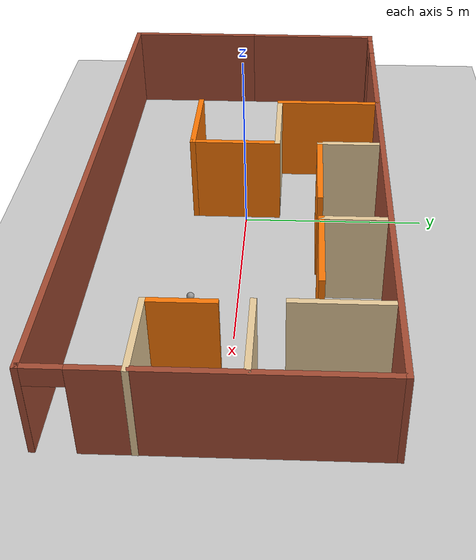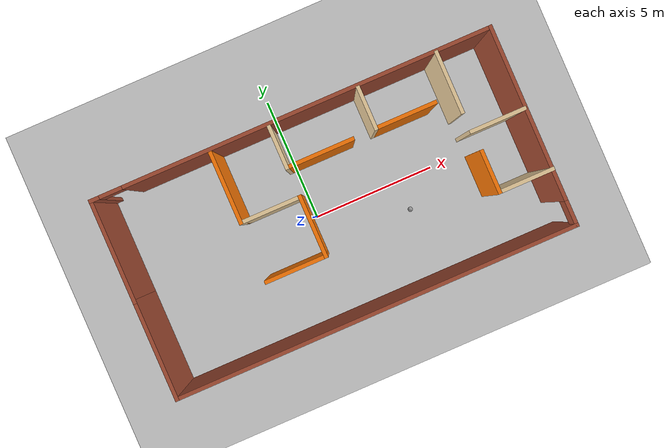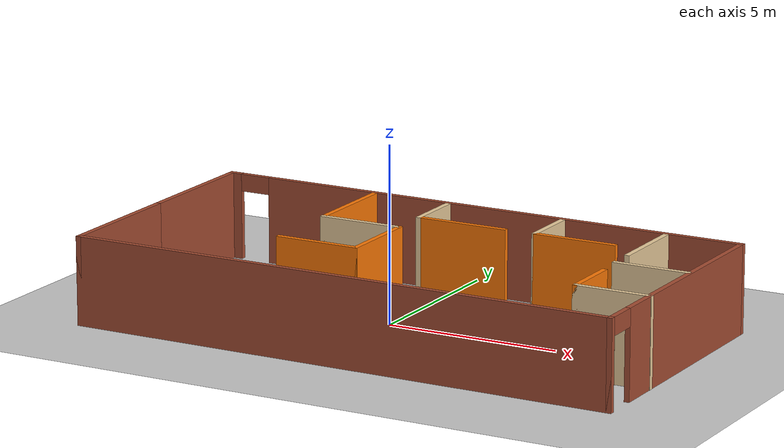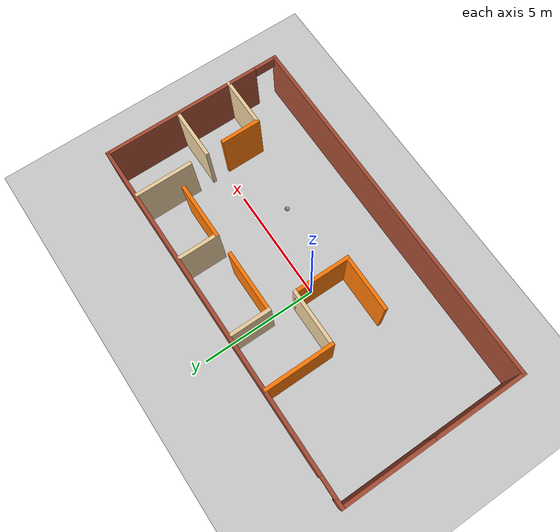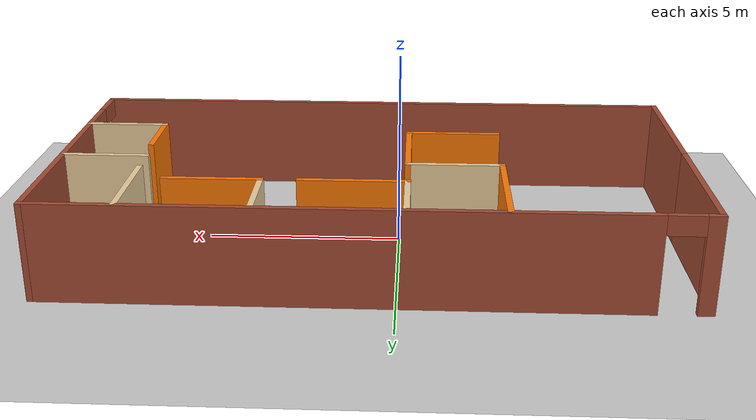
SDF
<sdf version="1.6">
 <world name="default">
  <light name="sun" type="directional">
   <pose>0 0 10 0 -0 0</pose>
   <diffuse>0.8 0.8 0.8 1</diffuse>
   <specular>0.2 0.2 0.2 1</specular>
   <attenuation>
    <range>1000</range>
    <constant>0.9</constant>
    <linear>0.01</linear>
    <quadratic>0.001</quadratic>
   </attenuation>
   <direction>-0.5 0.1 -0.9</direction>
  </light>
  <model name="ground_plane">
   <static>1</static>
   <link name="link">
    <collision name="collision">
     <geometry><plane><normal>0 0 1</normal><size>100 100</size></plane></geometry>
     <surface>
      <contact><collide_bitmask>65535</collide_bitmask></contact>
      <friction><ode><mu>100</mu><mu2>50</mu2></ode></friction>
     </surface>
    </collision>
    <visual name="visual">
     <cast_shadows>0</cast_shadows>
     <geometry><plane><normal>0 0 1</normal><size>100 100</size></plane></geometry>
     <material>
      <script><uri>file://media/materials/scripts/gazebo.material</uri><name>Gazebo/Grey</name></script>
     </material>
    </visual>
   </link>
  </model>
  <gravity>0 0 -9.8</gravity>
  <magnetic_field>6e-06 2.3e-05 -4.2e-05</magnetic_field>
  <atmosphere type="adiabatic"/>
  <physics name="default_physics" default="0" type="ode">
   <max_step_size>0.001</max_step_size>
   <real_time_factor>1</real_time_factor>
   <real_time_update_rate>1000</real_time_update_rate>
  </physics>
  <scene><ambient>0.4 0.4 0.4 1</ambient><background>0.7 0.7 0.7 1</background><shadows>1</shadows></scene>
  <audio><device>default</device></audio>
  <spherical_coordinates>
   <surface_model>EARTH_WGS84</surface_model>
   <latitude_deg>0</latitude_deg>
   <longitude_deg>0</longitude_deg>
   <elevation>0</elevation>
   <heading_deg>0</heading_deg>
  </spherical_coordinates>
  <model name="sudhir.building">
   <pose>0.673102 -0.134423 0 0 -0 0</pose>
   <link name="Wall_0">
    <collision name="Wall_0_Collision">
     <geometry><box><size>4 0.15 2.5</size></box></geometry>
     <pose>0 0 1.25 0 -0 0</pose>
    </collision>
    <visual name="Wall_0_Visual">
     <pose>0 0 1.25 0 -0 0</pose>
     <geometry><box><size>4 0.15 2.5</size></box></geometry>
     <material>
      <script><uri>file://media/materials/scripts/gazebo.material</uri><name>Gazebo/Bricks</name></script>
      <ambient>1 1 1 1</ambient>
     </material>
     <meta><layer>0</layer></meta>
    </visual>
    <pose>-7.92943 1.85 0 0 -0 -1.5708</pose>
   </link>
   <link name="Wall_10">
    <collision name="Wall_10_Collision">
     <geometry><box><size>2.5 0.15 2.5</size></box></geometry>
     <pose>0 0 1.25 0 -0 0</pose>
    </collision>
    <visual name="Wall_10_Visual">
     <pose>0 0 1.25 0 -0 0</pose>
     <geometry><box><size>2.5 0.15 2.5</size></box></geometry>
     <material>
      <script><uri>file://media/materials/scripts/gazebo.material</uri><name>Gazebo/Grey</name></script>
      <ambient>0.996078 0.47451 0.0196078 1</ambient>
     </material>
     <meta><layer>0</layer></meta>
    </visual>
    <pose>-0.891787 -0.14494 0 0 -0 -1.5708</pose>
   </link>
   <link name="Wall_11">
    <collision name="Wall_11_Collision">
     <geometry><box><size>2.5 0.15 2.5</size></box></geometry>
     <pose>0 0 1.25 0 -0 0</pose>
    </collision>
    <visual name="Wall_11_Visual">
     <pose>0 0 1.25 0 -0 0</pose>
     <geometry><box><size>2.5 0.15 2.5</size></box></geometry>
     <material>
      <script><uri>file://media/materials/scripts/gazebo.material</uri><name>Gazebo/Grey</name></script>
      <ambient>0.996078 0.47451 0.0196078 1</ambient>
     </material>
     <meta><layer>0</layer></meta>
    </visual>
    <pose>-2.06679 -1.31994 0 0 -0 3.14159</pose>
   </link>
   <link name="Wall_13">
    <collision name="Wall_13_Collision">
     <geometry><box><size>1.75 0.15 2.5</size></box></geometry>
     <pose>0 0 1.25 0 -0 0</pose>
    </collision>
    <visual name="Wall_13_Visual">
     <pose>0 0 1.25 0 -0 0</pose>
     <geometry><box><size>1.75 0.15 2.5</size></box></geometry>
     <material>
      <script><uri>file://media/materials/scripts/gazebo.material</uri><name>Gazebo/Grey</name></script>
      <ambient>0.921569 0.807843 0.615686 1</ambient>
     </material>
     <meta><layer>0</layer></meta>
    </visual>
    <pose>-0.908613 2.9996 0 0 -0 -1.5708</pose>
   </link>
   <link name="Wall_14">
    <collision name="Wall_14_Collision">
     <geometry><box><size>2.75 0.15 2.5</size></box></geometry>
     <pose>0 0 1.25 0 -0 0</pose>
    </collision>
    <visual name="Wall_14_Visual">
     <pose>0 0 1.25 0 -0 0</pose>
     <geometry><box><size>2.75 0.15 2.5</size></box></geometry>
     <material>
      <script><uri>file://media/materials/scripts/gazebo.material</uri><name>Gazebo/Grey</name></script>
      <ambient>0.996078 0.47451 0.0196078 1</ambient>
     </material>
     <meta><layer>0</layer></meta>
    </visual>
    <pose>0.391387 2.19961 0 0 -0 0</pose>
   </link>
   <link name="Wall_17">
    <collision name="Wall_17_Collision">
     <geometry><box><size>1.75 0.15 2.5</size></box></geometry>
     <pose>0 0 1.25 0 -0 0</pose>
    </collision>
    <visual name="Wall_17_Visual">
     <pose>0 0 1.25 0 -0 0</pose>
     <geometry><box><size>1.75 0.15 2.5</size></box></geometry>
     <material>
      <script><uri>file://media/materials/scripts/gazebo.material</uri><name>Gazebo/Grey</name></script>
      <ambient>0.921569 0.807843 0.615686 1</ambient>
     </material>
     <meta><layer>0</layer></meta>
    </visual>
    <pose>2.63138 3.01972 0 0 -0 -1.5708</pose>
   </link>
   <link name="Wall_18">
    <collision name="Wall_18_Collision">
     <geometry><box><size>2.5 0.15 2.5</size></box></geometry>
     <pose>0 0 1.25 0 -0 0</pose>
    </collision>
    <visual name="Wall_18_Visual">
     <pose>0 0 1.25 0 -0 0</pose>
     <geometry><box><size>2.5 0.15 2.5</size></box></geometry>
     <material>
      <script><uri>file://media/materials/scripts/gazebo.material</uri><name>Gazebo/Grey</name></script>
      <ambient>0.996078 0.47451 0.0196078 1</ambient>
     </material>
     <meta><layer>0</layer></meta>
    </visual>
    <pose>3.80638 2.21972 0 0 -0 0</pose>
   </link>
   <link name="Wall_20">
    <collision name="Wall_20_Collision">
     <geometry><box><size>2.5 0.15 2.5</size></box></geometry>
     <pose>0 0 1.25 0 -0 0</pose>
    </collision>
    <visual name="Wall_20_Visual">
     <pose>0 0 1.25 0 -0 0</pose>
     <geometry><box><size>2.5 0.15 2.5</size></box></geometry>
     <material>
      <script><uri>file://media/materials/scripts/gazebo.material</uri><name>Gazebo/Grey</name></script>
      <ambient>0.921569 0.807843 0.615686 1</ambient>
     </material>
     <meta><layer>0</layer></meta>
    </visual>
    <pose>5.74898 2.68495 0 0 -0 -1.5708</pose>
   </link>
   <link name="Wall_22">
    <collision name="Wall_22_Collision">
     <geometry><box><size>2.25 0.15 2.5</size></box></geometry>
     <pose>0 0 1.25 0 -0 0</pose>
    </collision>
    <visual name="Wall_22_Visual">
     <pose>0 0 1.25 0 -0 0</pose>
     <geometry><box><size>2.25 0.15 2.5</size></box></geometry>
     <material>
      <script><uri>file://media/materials/scripts/gazebo.material</uri><name>Gazebo/Grey</name></script>
      <ambient>0.921569 0.807843 0.615686 1</ambient>
     </material>
     <meta><layer>0</layer></meta>
    </visual>
    <pose>6.81909 0.722229 0 0 -0 0</pose>
   </link>
   <link name="Wall_24">
    <collision name="Wall_24_Collision">
     <geometry><box><size>1.75 0.15 2.5</size></box></geometry>
     <pose>0 0 1.25 0 -0 0</pose>
    </collision>
    <visual name="Wall_24_Visual">
     <pose>0 0 1.25 0 -0 0</pose>
     <geometry><box><size>1.75 0.15 2.5</size></box></geometry>
     <material>
      <script><uri>file://media/materials/scripts/gazebo.material</uri><name>Gazebo/Grey</name></script>
      <ambient>0.996078 0.47451 0.0196078 1</ambient>
     </material>
     <meta><layer>0</layer></meta>
    </visual>
    <pose>5.82943 -0.902428 0 0 -0 -1.5708</pose>
   </link>
   <link name="Wall_25">
    <collision name="Wall_25_Collision">
     <geometry><box><size>2.25 0.15 2.5</size></box></geometry>
     <pose>0 0 1.25 0 -0 0</pose>
    </collision>
    <visual name="Wall_25_Visual">
     <pose>0 0 1.25 0 -0 0</pose>
     <geometry><box><size>2.25 0.15 2.5</size></box></geometry>
     <material>
      <script><uri>file://media/materials/scripts/gazebo.material</uri><name>Gazebo/Grey</name></script>
      <ambient>0.921569 0.807843 0.615686 1</ambient>
     </material>
     <meta><layer>0</layer></meta>
    </visual>
    <pose>6.87943 -1.70243 0 0 -0 0</pose>
   </link>
   <link name="Wall_3">
    <collision name="Wall_3_Collision">
     <geometry><box><size>4 0.15 2.5</size></box></geometry>
     <pose>0 0 1.25 0 -0 0</pose>
    </collision>
    <visual name="Wall_3_Visual">
     <pose>0 0 1.25 0 -0 0</pose>
     <geometry><box><size>4 0.15 2.5</size></box></geometry>
     <material>
      <script><uri>file://media/materials/scripts/gazebo.material</uri><name>Gazebo/Bricks</name></script>
      <ambient>1 1 1 1</ambient>
     </material>
     <meta><layer>0</layer></meta>
    </visual>
    <pose>-7.92943 -2 0 0 -0 -1.5708</pose>
   </link>
   <link name="Wall_4">
    <collision name="Wall_4_Collision">
     <geometry><box><size>16 0.15 2.5</size></box></geometry>
     <pose>0 0 1.25 0 -0 0</pose>
    </collision>
    <visual name="Wall_4_Visual">
     <pose>0 0 1.25 0 -0 0</pose>
     <geometry><box><size>16 0.15 2.5</size></box></geometry>
     <material>
      <script><uri>file://media/materials/scripts/gazebo.material</uri><name>Gazebo/Bricks</name></script>
      <ambient>1 1 1 1</ambient>
     </material>
     <meta><layer>0</layer></meta>
    </visual>
    <pose>-0.004434 -3.925 0 0 -0 0</pose>
   </link>
   <link name="Wall_5">
    <pose>7.92057 0 0 0 -0 1.5708</pose>
    <visual name="Wall_5_Visual_0">
     <pose>-3.92553 0 1.25 0 -0 0</pose>
     <geometry><box><size>0.148947 0.15 2.5</size></box></geometry>
     <material>
      <script><uri>file://media/materials/scripts/gazebo.material</uri><name>Gazebo/Bricks</name></script>
      <ambient>1 1 1 1</ambient>
     </material>
     <meta><layer>0</layer></meta>
    </visual>
    <collision name="Wall_5_Collision_0">
     <geometry><box><size>0.148947 0.15 2.5</size></box></geometry>
     <pose>-3.92553 0 1.25 0 -0 0</pose>
    </collision>
    <visual name="Wall_5_Visual_1">
     <pose>0.524473 0 1.25 0 -0 0</pose>
     <geometry><box><size>6.95105 0.15 2.5</size></box></geometry>
     <material>
      <script><uri>file://media/materials/scripts/gazebo.material</uri><name>Gazebo/Bricks</name></script>
      <ambient>1 1 1 1</ambient>
     </material>
     <meta><layer>0</layer></meta>
    </visual>
    <collision name="Wall_5_Collision_1">
     <geometry><box><size>6.95105 0.15 2.5</size></box></geometry>
     <pose>0.524473 0 1.25 0 -0 0</pose>
    </collision>
    <visual name="Wall_5_Visual_2">
     <pose>-3.40105 0 2.25 0 -0 0</pose>
     <geometry><box><size>0.9 0.15 0.5</size></box></geometry>
     <material>
      <script><uri>file://media/materials/scripts/gazebo.material</uri><name>Gazebo/Bricks</name></script>
      <ambient>1 1 1 1</ambient>
     </material>
     <meta><layer>0</layer></meta>
    </visual>
    <collision name="Wall_5_Collision_2">
     <geometry><box><size>0.9 0.15 0.5</size></box></geometry>
     <pose>-3.40105 0 2.25 0 -0 0</pose>
    </collision>
   </link>
   <link name="Wall_6">
    <pose>-0.004434 3.925 0 0 -0 3.14159</pose>
    <visual name="Wall_6_Visual_0">
     <pose>-0.655307 0 1.25 0 -0 0</pose>
     <geometry><box><size>14.6894 0.15 2.5</size></box></geometry>
     <material>
      <script><uri>file://media/materials/scripts/gazebo.material</uri><name>Gazebo/Bricks</name></script>
      <ambient>1 1 1 1</ambient>
     </material>
     <meta><layer>0</layer></meta>
    </visual>
    <collision name="Wall_6_Collision_0">
     <geometry><box><size>14.6894 0.15 2.5</size></box></geometry>
     <pose>-0.655307 0 1.25 0 -0 0</pose>
    </collision>
    <visual name="Wall_6_Visual_1">
     <pose>7.79469 0 1.25 0 -0 0</pose>
     <geometry><box><size>0.410614 0.15 2.5</size></box></geometry>
     <material>
      <script><uri>file://media/materials/scripts/gazebo.material</uri><name>Gazebo/Bricks</name></script>
      <ambient>1 1 1 1</ambient>
     </material>
     <meta><layer>0</layer></meta>
    </visual>
    <collision name="Wall_6_Collision_1">
     <geometry><box><size>0.410614 0.15 2.5</size></box></geometry>
     <pose>7.79469 0 1.25 0 -0 0</pose>
    </collision>
    <visual name="Wall_6_Visual_2">
     <pose>7.13939 0 2.25 0 -0 0</pose>
     <geometry><box><size>0.9 0.15 0.5</size></box></geometry>
     <material>
      <script><uri>file://media/materials/scripts/gazebo.material</uri><name>Gazebo/Bricks</name></script>
      <ambient>1 1 1 1</ambient>
     </material>
     <meta><layer>0</layer></meta>
    </visual>
    <collision name="Wall_6_Collision_2">
     <geometry><box><size>0.9 0.15 0.5</size></box></geometry>
     <pose>7.13939 0 2.25 0 -0 0</pose>
    </collision>
   </link>
   <link name="Wall_8">
    <collision name="Wall_8_Collision">
     <geometry><box><size>3 0.15 2.5</size></box></geometry>
     <pose>0 0 1.25 0 -0 0</pose>
    </collision>
    <visual name="Wall_8_Visual">
     <pose>0 0 1.25 0 -0 0</pose>
     <geometry><box><size>3 0.15 2.5</size></box></geometry>
     <material>
      <script><uri>file://media/materials/scripts/gazebo.material</uri><name>Gazebo/Grey</name></script>
      <ambient>0.996078 0.47451 0.0196078 1</ambient>
     </material>
     <meta><layer>0</layer></meta>
    </visual>
    <pose>-3.24179 2.45506 0 0 -0 -1.5708</pose>
   </link>
   <link name="Wall_9">
    <collision name="Wall_9_Collision">
     <geometry><box><size>2.5 0.15 2.5</size></box></geometry>
     <pose>0 0 1.25 0 -0 0</pose>
    </collision>
    <visual name="Wall_9_Visual">
     <pose>0 0 1.25 0 -0 0</pose>
     <geometry><box><size>2.5 0.15 2.5</size></box></geometry>
     <material>
      <script><uri>file://media/materials/scripts/gazebo.material</uri><name>Gazebo/Grey</name></script>
      <ambient>0.921569 0.807843 0.615686 1</ambient>
     </material>
     <meta><layer>0</layer></meta>
    </visual>
    <pose>-2.06679 1.03006 0 0 -0 0</pose>
   </link>
   <static>1</static>
  </model>
  <model name="my_ball">
   <link name="link_0">
    <inertial>
     <mass>1</mass>
     <inertia><ixx>0.1</ixx><ixy>0</ixy><ixz>0</ixz><iyy>0.1</iyy><iyz>0</iyz><izz>0.1</izz></inertia>
    </inertial>
    <visual name="visual">
     <geometry><sphere><radius>0.1</radius></sphere></geometry>
     <material>
      <lighting>1</lighting>
      <script><uri>file://media/materials/scripts/gazebo.material</uri><name>Gazebo/Grey</name></script>
      <shader type="vertex"><normal_map>__default__</normal_map></shader>
      <ambient>1 1 1 1</ambient>
      <diffuse>1 1 1 1</diffuse>
      <specular>1 1 1 1</specular>
      <emissive>1 1 1 1</emissive>
     </material>
    </visual>
    <collision name="collision">
     <geometry><sphere><radius>0.1</radius></sphere></geometry>
     <surface>
      <friction>
       <ode><mu>1</mu><mu2>1</mu2><fdir1>0 0 0</fdir1><slip1>0</slip1><slip2>0</slip2></ode>
       <torsional>
        <coefficient>1</coefficient>
        <patch_radius>0</patch_radius>
        <surface_radius>0</surface_radius>
        <use_patch_radius>1</use_patch_radius>
        <ode><slip>0</slip></ode>
       </torsional>
      </friction>
      <bounce><restitution_coefficient>0</restitution_coefficient><threshold>1e+06</threshold></bounce>
      <contact>
       <collide_without_contact>0</collide_without_contact>
       <collide_without_contact_bitmask>1</collide_without_contact_bitmask>
       <collide_bitmask>1</collide_bitmask>
       <ode>
        <soft_cfm>0</soft_cfm>
        <soft_erp>0.2</soft_erp>
        <kp>1e+13</kp>
        <kd>1</kd>
        <max_vel>0.01</max_vel>
        <min_depth>0</min_depth>
       </ode>
       <bullet>
        <split_impulse>1</split_impulse>
        <split_impulse_penetration_threshold>-0.01</split_impulse_penetration_threshold>
        <soft_cfm>0</soft_cfm>
        <soft_erp>0.2</soft_erp>
        <kp>1e+13</kp>
        <kd>1</kd>
       </bullet>
      </contact>
     </surface>
    </collision>
   </link>
   <static>0</static>
   <pose>3.55994 -1.22025 0.1 0.018695 -0 0</pose>
  </model>
  <spherical_coordinates>
   <surface_model>Ryuyo</surface_model>
   <latitude_deg>34.6541223</latitude_deg>
   <longitude_deg>137.820573</longitude_deg>
   <elevation>49.278</elevation>
   <heading_deg>180</heading_deg>
  </spherical_coordinates>
 </world>
</sdf>
